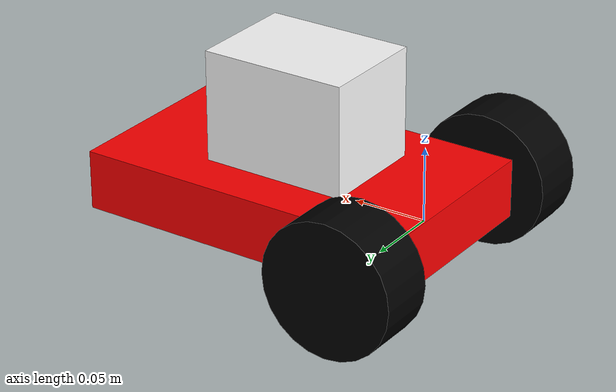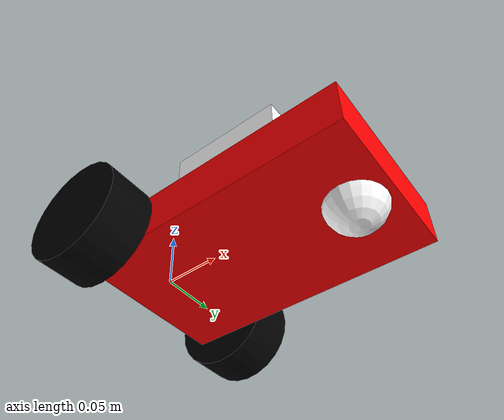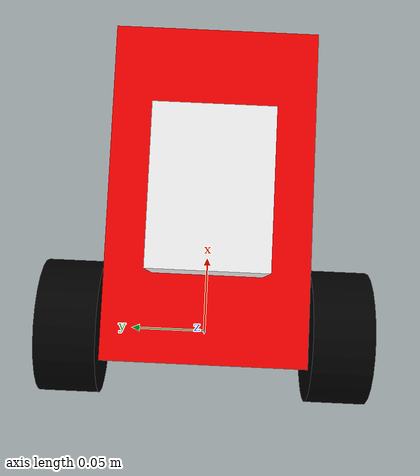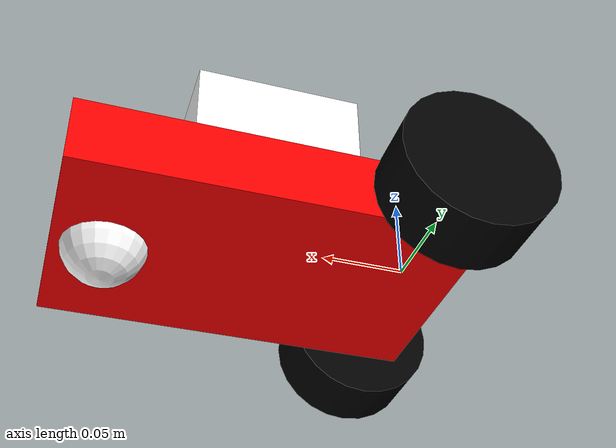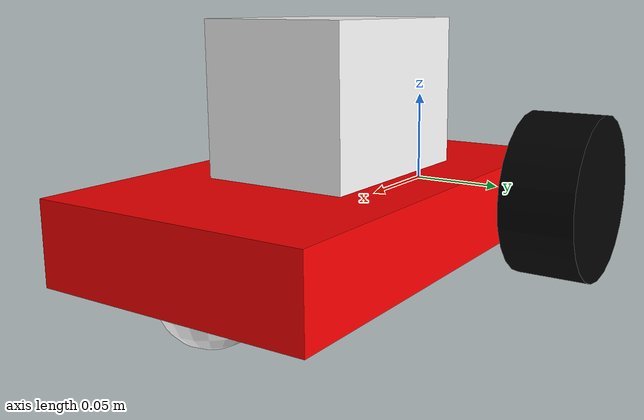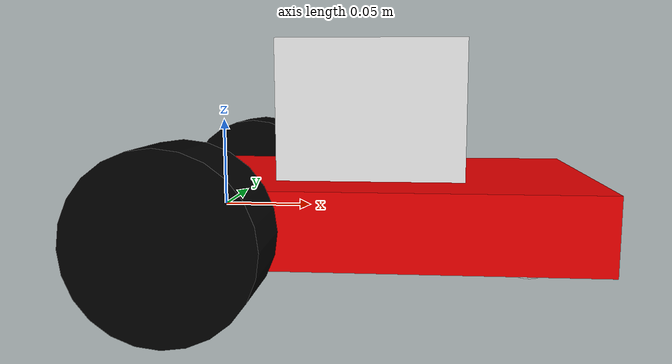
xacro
<?xml version="1.0"?>
<robot xmlns:xacro="http://www.ros.org/wiki/xacro" >

    <xacro:include filename="inertial_macros.xacro"/>

    <!-- COLORS -->

    <material name="red">
        <color rgba="1 0 0 1"/>
    </material>

    <material name="black">
        <color rgba="0 0 0 1"/>
    </material>

    <material name="white">
        <color rgba="1 1 1 1"/>
    </material>

    <material name="transparent_white">
        <color rgba="1 1 1 0"/>
    </material>

    <!-- BASE LINK -->

    <link name="base_link">

    </link>

    <!-- BASE FOOTPRINT LINK -->

    <joint name="base_footprint_joint" type="fixed">
        <parent link="base_link"/>
        <child link="base_footprint"/>
        <origin xyz="0 0 0" rpy="0 0 0"/>
    </joint>

    <link name="base_footprint">
    </link>

    <!-- CHASSIS LINK -->

    <joint name="chassis_joint" type="fixed">
        <parent link="base_link"/>
        <child link="chassis"/>
        <origin xyz="-0.022 0 0"/>
    </joint>

    <link name="chassis">
        <visual>
            <origin xyz="0.115 0 0"/>
            <geometry>
                <box size="0.23 0.14 0.04"/>
            </geometry>
            <material name="red"/>
        </visual>

        <collision>
            <origin xyz="0.115 0 0"/>
            <geometry>
                <box size="0.23 0.14 0.04"/>
            </geometry>
        </collision>

        <xacro:inertial_box mass="0.5" x="0.23" y="0.14" z="0">
            <origin xyz="0.115 0 0" rpy="0 0 0"/>
        </xacro:inertial_box>

    </link>

    <!-- WHITE BOX ON TOP -->

    <joint name="white_box_on_top_joint" type="fixed">
        <parent link="chassis"/>
        <child link="white_box_on_top"/>
    </joint>

    <link name="white_box_on_top">
        <visual>
            <origin xyz="0.11 0 0.0575"/>
            <geometry>
                <box size="0.1 0.075 0.075"/>
            </geometry>
            <material name="transparent_white"/>
        </visual>
    </link>

    <!-- LEFT WHEEL LINK -->

    <joint name ="left_wheel_joint" type="continuous">
        <parent link="base_link"/>
        <child link="left_wheel"/>
        <origin xyz="0 0.09 0" rpy="-${pi/2} 0 0"/>
        <axis xyz="0 0 1"/>
    </joint>

    <link name="left_wheel">
        <visual>
            <geometry>
                <cylinder radius="0.045" length="0.04"/>
            </geometry>
            <material name="black"/>
        </visual>

        <collision>
            <geometry>
                <cylinder radius="0.045" length="0.04"/>
            </geometry>
        </collision>

        <xacro:inertial_cylinder mass="0.1" length="0.04" radius="0.045">
            <origin xyz="0 0 0" rpy="0 0 0"/>
        </xacro:inertial_cylinder>

    </link>

    <!-- RIGHT WHEEL LINK -->

    <joint name ="right_wheel_joint" type="continuous">
        <parent link="base_link"/>
        <child link="right_wheel"/>
        <origin xyz="0 -0.09 0" rpy="${pi/2} 0 0"/>
        <axis xyz="0 0 -1"/>
    </joint>

    <link name="right_wheel">
        <visual>
            <geometry>
                <cylinder radius="0.045" length="0.04"/>
            </geometry>
            <material name="black"/>
        </visual>

        <collision>
            <geometry>
                <cylinder radius="0.045" length="0.04"/>
            </geometry>
        </collision>

        <xacro:inertial_cylinder mass="0.1" length="0.04" radius="0.045">
            <origin xyz="0 0 0" rpy="0 0 0"/>
        </xacro:inertial_cylinder>

    </link>

    <!-- CASTER WHEEL LINK -->

    <joint name="caster_wheel_joint" type="fixed">
        <parent link="chassis"/>
        <child link="caster_wheel"/>
        <origin xyz="0.2 0 -0.0165"/>
    </joint>

    <link name="caster_wheel">
        <visual>
            <geometry>
           <sphere radius="0.025"/>
            </geometry>
            <material name="white"/>
        </visual>

        <collision>
            <geometry>
                <sphere radius="0.025"/>
            </geometry>
        </collision>

        <xacro:inertial_sphere mass="0.1" radius="0.025">
            <origin xyz="0 0 0" rpy="0 0 0"/>
        </xacro:inertial_sphere>

    </link>

    <gazebo reference="caster_wheel">
        <mu1 value="0.005"/>
        <mu2 value="0.005"/>
    </gazebo>

</robot>
